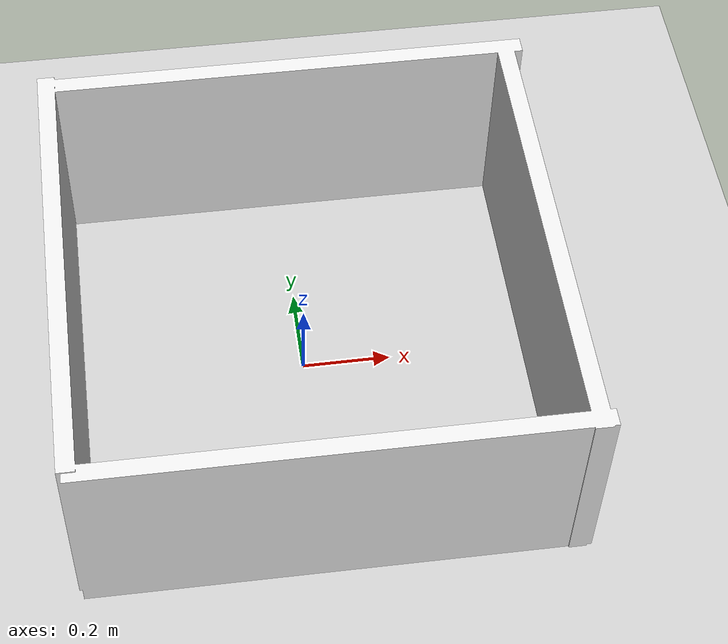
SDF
<?xml version="1.0"?>
<sdf version="1.6">
  <world name="default">
    <include>
      <uri>model://ground_plane</uri>
    </include>

    <include>
      <uri>model://sun</uri>
    </include>

    <scene>
      <shadows>false</shadows>
    </scene>

    <gui fullscreen='0'>
      <camera name='user_camera'>
        <pose frame=''>0.319654 -0.235002 9.29441 0 1.5138 0.009599</pose>
        <view_controller>orbit</view_controller>
        <projection_type>perspective</projection_type>
      </camera>
    </gui>

    <physics type="ode">
      <real_time_update_rate>1000.0</real_time_update_rate>
      <max_step_size>0.001</max_step_size>
      <real_time_factor>1</real_time_factor>
      <ode>
        <solver>
          <type>quick</type>
          <iters>150</iters>
          <precon_iters>0</precon_iters>
          <sor>1.400000</sor>
          <use_dynamic_moi_rescaling>1</use_dynamic_moi_rescaling>
        </solver>
        <constraints>
          <cfm>0.00001</cfm>
          <erp>0.2</erp>
          <contact_max_correcting_vel>2000.000000</contact_max_correcting_vel>
          <contact_surface_layer>0.01000</contact_surface_layer>
        </constraints>
      </ode>
    </physics>

    <model name="square_world">
      <static>1</static>
      <include>
        <uri>model://square_world</uri>
      </include>
    </model>

  </world>
</sdf>

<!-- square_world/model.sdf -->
<sdf version='1.5'>
  <model name="model">
    <static>1</static>
    <link name="symbol">
      <visual name="Cube.001">
        <geometry>
          <mesh>
            <uri>model://square_world/meshes/model-no-floor.dae</uri>
            <scale>0.25 0.25 0.25</scale>
          </mesh>
        </geometry>
        <material>
          <script>
            <uri>file://media/materials/scripts/gazebo.material</uri>
            <name>Gazebo/White</name>
          </script>
        </material>
      </visual>
      <visual name="Cube.002">
        <geometry>
          <mesh>
            <uri>model://square_world/meshes/model-no-floor.dae</uri>
            <scale>0.25 0.25 0.25</scale>
          </mesh>
        </geometry>
        <material>
          <script>
            <uri>file://media/materials/scripts/gazebo.material</uri>
            <name>Gazebo/White</name>
          </script>
        </material>
      </visual>
      <visual name="Cube.003">
        <geometry>
          <mesh>
            <uri>model://square_world/meshes/model-no-floor.dae</uri>
            <scale>0.25 0.25 0.25</scale>
          </mesh>
        </geometry>
        <material>
          <script>
            <uri>file://media/materials/scripts/gazebo.material</uri>
            <name>Gazebo/White</name>
          </script>
        </material>
      </visual>
      <visual name="Cube.004">
        <geometry>
          <mesh>
            <uri>model://square_world/meshes/model-no-floor.dae</uri>
            <scale>0.25 0.25 0.25</scale>
          </mesh>
        </geometry>
        <material>
          <script>
            <uri>file://media/materials/scripts/gazebo.material</uri>
            <name>Gazebo/White</name>
          </script>
        </material>
      </visual>
      <collision name="collision">
        <geometry>
          <mesh>
            <uri>model://square_world/meshes/model-no-floor.dae</uri>
            <scale>0.25 0.25 0.25</scale>
          </mesh>
        </geometry>
        <surface/>
        <contact/>
      </collision>
    </link>
  </model>
</sdf>
